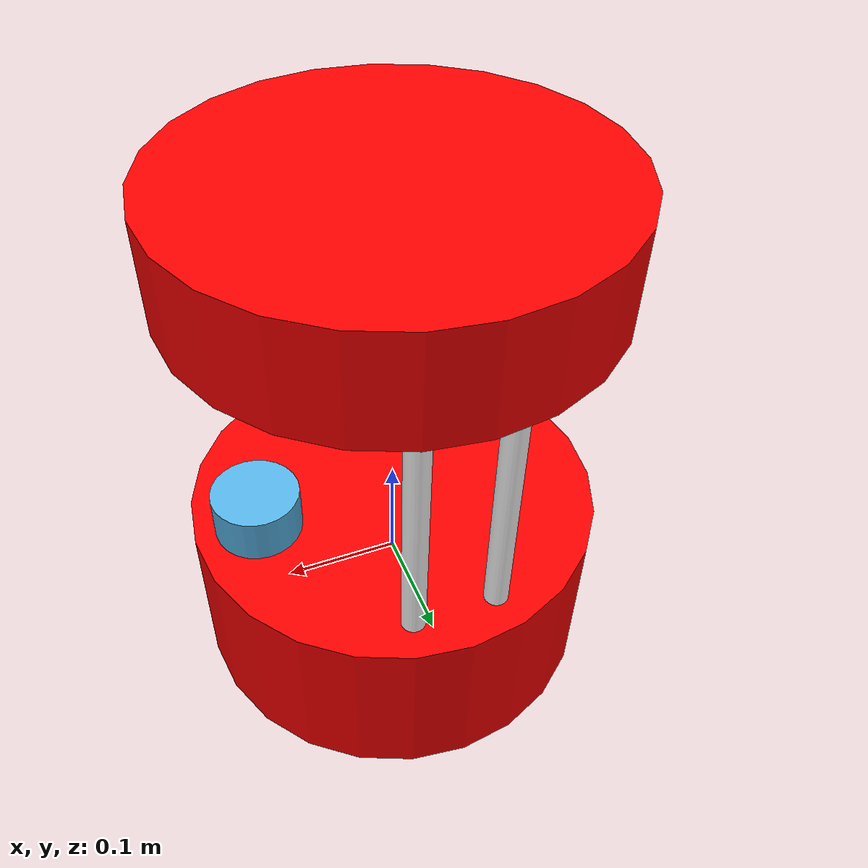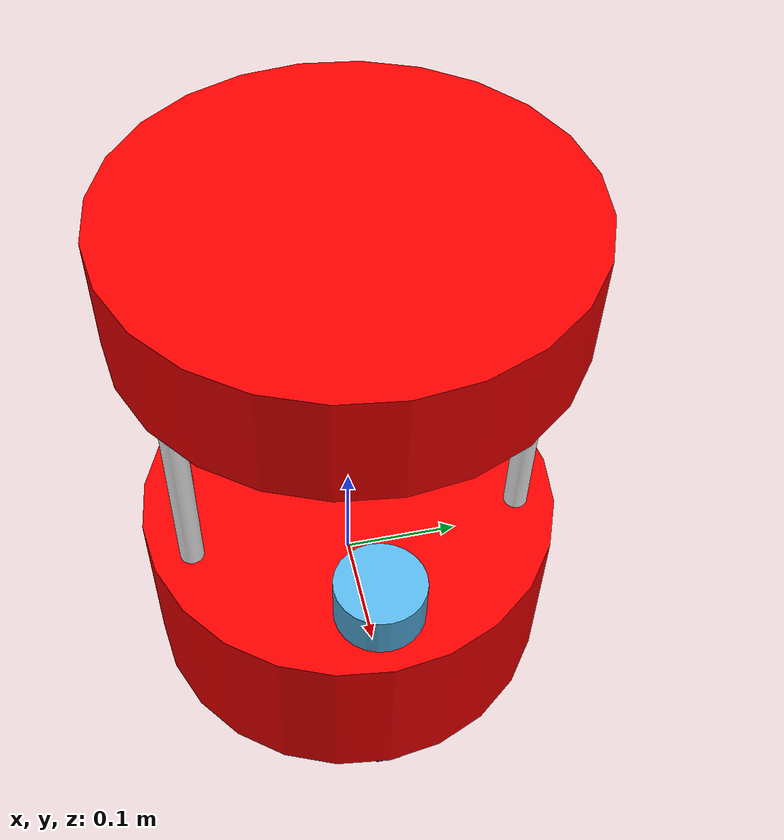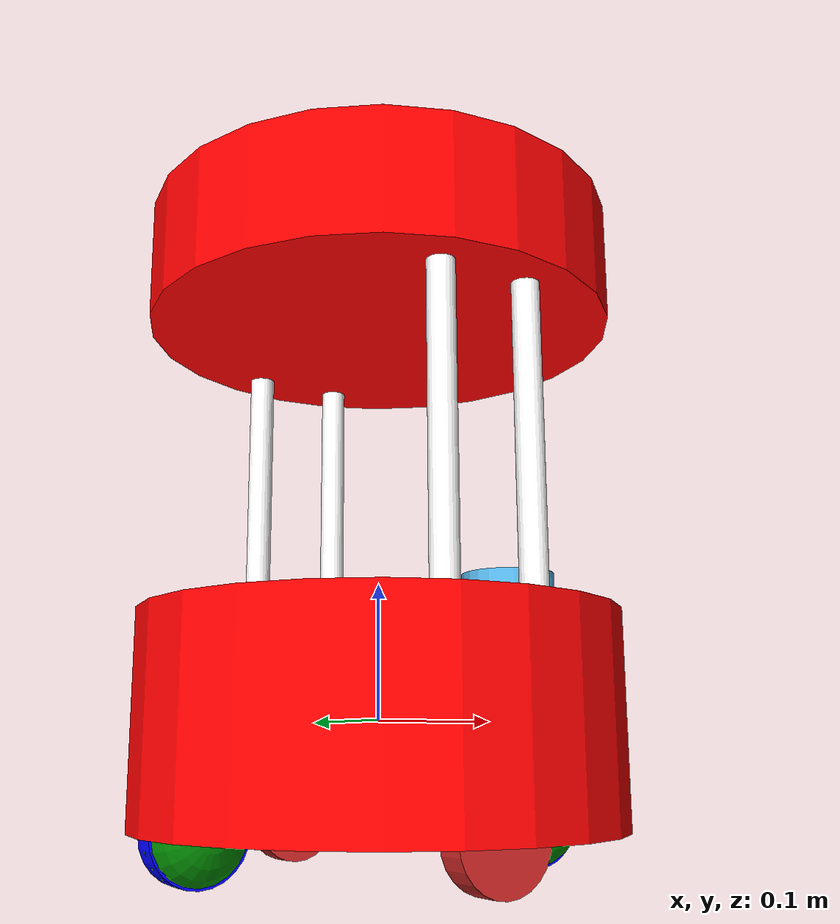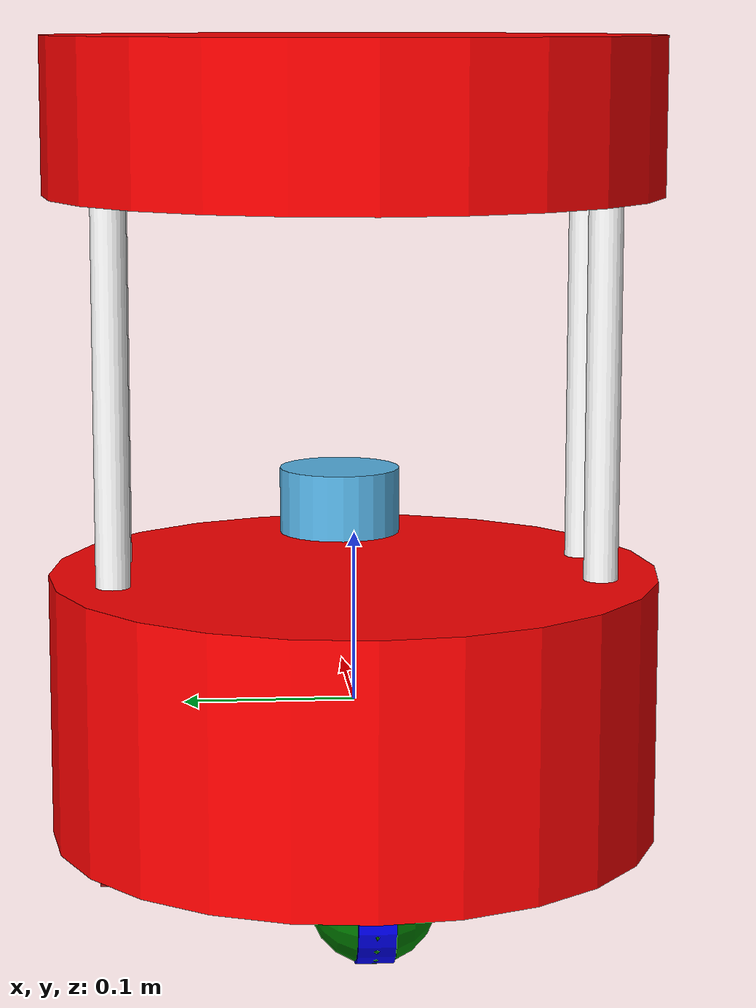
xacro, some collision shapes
<?xml version="1.0"?>
<robot xmlns:xacro="http://www.ros.org/wiki/xacro" name="barista_robot">
<xacro:arg name="robot_name" default=""/>
<xacro:property name="robot_name" value="$(arg robot_name)"/>

<xacro:property name="baseheadlink_radius" value="0.178"/>
<xacro:property name="baselink_height" value="0.155"/>
<xacro:property name="headlink_height" value="0.090"/>
<xacro:property name="headlink_mass" value="10.335"/>
<xacro:property name="rod_radius" value="0.010"/>
<xacro:property name="rod_height" value="0.220"/>
<xacro:property name="rod_mass" value="0.1"/>
<xacro:property name="wheel_radius" value="0.0352"/>
<xacro:property name="wheel_width" value="0.0206"/>
<xacro:property name="wheel_mass" value="1.0"/>

<xacro:property name="laser_box_width" value="0.05"/>
<xacro:property name="laser_box_length" value="0.05"/>
<xacro:property name="laser_box_height" value="0.05"/>

  <material name="red">
      <color rgba="1.0 0.0 0.0 1"/>
  </material>

  <material name="green_light">
      <color rgba="0.0 1.0 0.0 1"/>
  </material>

  <material name="green_dark">
    <color rgba="0.0 0.5 0.0 1"/>
  </material>

  <material name="blue">
      <color rgba="0.0 0.0 1.0 1"/>
  </material>

  <material name="yellow">
      <color rgba="1.0 1.0 0.0 1"/>
  </material>

  <material name="black">
      <color rgba="0.0 0.0 0.0 1"/>
  </material>

  <material name="white">
      <color rgba="1.0 1.0 1.0 1"/>
  </material>

  <link name="base_link">
    <visual>
      <geometry>
      <cylinder radius="${baseheadlink_radius}" length="${baselink_height}"/>
      </geometry>

    <xacro:if value="${robot_name == 'morty'}">
                <material name="green_dark"/>
    </xacro:if>
     <xacro:unless value="${robot_name == 'morty'}">
                <material name="red"/>
    </xacro:unless>

    </visual>

    <collision>
          <geometry>
      <cylinder radius="${baseheadlink_radius}" length="${baselink_height}"/>
      </geometry>
    </collision>

        <inertial>
      <mass value="17.8"/>
      <origin rpy="0 0 0" xyz="0 0 0"/>
      <inertia ixx="0.17663088333333335" ixy="0" ixz="0" iyy="0.17663088333333335" iyz="0" izz="0.2819876"/>
    </inertial>

  </link>

    <xacro:if value="${robot_name == 'morty'}">
    <gazebo reference="base_link">
        <material>Gazebo/Green</material>
    </gazebo>
    </xacro:if>
     <xacro:unless value="${robot_name == 'morty'}">
    <gazebo reference="base_link">
        <material>Gazebo/Red</material>
    </gazebo>
    </xacro:unless>

 <!-- Attaching TF for TF follow -->
  <link name="barista_attach_frame">
  </link>

  <joint name="barista_attach_frame_joint" type="fixed">
    <origin rpy="0 0 0" xyz="0.5 0.5 0" />
    <parent link="base_link" />
    <child link="barista_attach_frame" />
  </joint>

  <!-- Standoff Macro -->
  <xacro:include filename="$(find barista_robot_description)/urdf/standoff.xacro" />
  <xacro:standoff standoff_name="base_to_head_rod_1" />
  <xacro:standoff standoff_name="base_to_head_rod_2" />
  <xacro:standoff standoff_name="base_to_head_rod_3" />
  <xacro:standoff standoff_name="base_to_head_rod_4" />

  <joint name="base_link_to_rod_1" type="fixed">
        <origin rpy="0 0 1.5708" xyz="0.0356 0.140 0.0775" />
        <parent link="base_link" />
        <child link="base_to_head_rod_1" />/>
   </joint>
  <joint name="base_link_to_rod_2" type="fixed">
        <origin rpy="0 0 1.5708" xyz="-0.0356 0.140 0.0775" />
        <parent link="base_link" />
        <child link="base_to_head_rod_2" />/>
   </joint>
  <joint name="base_link_to_rod_3" type="fixed">
        <origin rpy="0 0 1.5708" xyz="0.0356 -0.140 0.0775" />
        <parent link="base_link" />
        <child link="base_to_head_rod_3" />/>
   </joint>
  <joint name="base_link_to_rod_4" type="fixed">
        <origin rpy="0 0 1.5708" xyz=" -0.0356 -0.140 0.0775" />
        <parent link="base_link" />
        <child link="base_to_head_rod_4" />/>
   </joint>
  <joint name="base_link_to_head_link" type="fixed">
        <origin rpy="0 0 0" xyz="0 0 0.2975" />
        <parent link="base_link" />
        <child link="head_link" />/>
   </joint>

  <!-- Cup holder tray Macro -->
  <xacro:include filename="$(find barista_robot_description)/urdf/cup_holder_tray.xacro" />
  <xacro:cup_holder_tray cup_holder_tray_name="head_link" />

  <!-- Wheel Macro -->
  <xacro:include filename="$(find barista_robot_description)/urdf/wheel.xacro" />
  <!-- Wheel Left -->
  <xacro:wheel wheel_name="left_wheel" />

  <!-- Wheel Right -->
  <xacro:wheel wheel_name="right_wheel" />

  <joint name="joint_left_wheel" type="continuous">
    <origin rpy="0 0 0" xyz="0 0.14 -0.075"/>
    <child link="left_wheel"/>
    <parent link="base_link"/>
    <axis rpy="0 0 0" xyz="0 1 0"/>
    <limit effort="10000" velocity="1000"/>
    <joint_properties damping="1.0" friction="1.0"/>
  </joint>

  <joint name="joint_right_wheel" type="continuous">
    <origin rpy="0 0 0" xyz="0 -0.14 -0.075"/>
    <child link="right_wheel"/>
    <parent link="base_link"/>
    <axis rpy="0 0 0" xyz="0 1 0"/>
    <limit effort="10000" velocity="1000"/>
    <joint_properties damping="1.0" friction="1.0"/>
  </joint>

<!-- Caster Wheel Front -->
 <joint name="front_yaw_joint" type="continuous">
    <origin rpy="0 0 0" xyz="0.14 0 -0.075" />
    <parent link="base_link" />
    <child link="front_yaw_link" />
    <axis xyz="0 0 1" />
    <limit effort="1000.0" velocity="100.0" />
    <dynamics damping="0.1" friction="0.5"/>
  </joint>
  <link name="front_yaw_link">
    <visual>
        <origin rpy="0 1.5707 1.5707" xyz="0 0 0"/>
        <geometry>
          <cylinder length="0.0206" radius="0.0352"/>
        </geometry>
        <material name="blue"/>
      </visual>
      <collision>
              <origin rpy="0 1.5707 1.5707" xyz="0 0 0"/>
        <geometry>
          <cylinder length="0.0206" radius="0.0352"/>
        </geometry>
      </collision>
      <inertial>
          <origin rpy="0 1.5707 1.5707" xyz="0 0 0"/>
          <mass value="0.3"/>
          <inertia ixx="0.000103537" ixy="0" ixz="0" iyy="0.000103537" iyz="0" izz="0.000185856"/>
      </inertial>
  </link>
<gazebo reference="front_yaw_link">
    <material>Gazebo/Blue</material>
</gazebo>

  <joint name="front_roll_joint" type="continuous">
    <origin rpy="0 0 0" xyz="0 0 0" />
    <parent link="front_yaw_link" />
    <child link="front_roll_link" />
    <axis xyz="1 0 0" />
    <limit effort="1000.0" velocity="100.0" />
    <dynamics damping="0.1" friction="0.5"/>
  </joint>
  <link name="front_roll_link">
      <visual>
        <origin rpy="0 1.5707 1.5707" xyz="0 0 0"/>
        <geometry>
          <cylinder length="0.0206" radius="0.0352"/>
        </geometry>
        <material name="red"/>
      </visual>
      <collision>
              <origin rpy="0 1.5707 1.5707" xyz="0 0 0"/>
        <geometry>
          <cylinder length="0.0206" radius="0.0352"/>
        </geometry>
      </collision>
      <inertial>
          <origin rpy="0 1.5707 1.5707" xyz="0 0 0"/>
          <mass value="0.3"/>
          <inertia ixx="0.000103537" ixy="0" ixz="0" iyy="0.000103537" iyz="0" izz="0.000185856"/>
      </inertial>
  </link>
    <gazebo reference="front_roll_link">
        <material>Gazebo/Red</material>
    </gazebo>

  <joint name="front_pitch_joint" type="continuous">
    <origin rpy="0 0 0" xyz="0.14 0 -0.075" />
    <parent link="base_link" />
    <child link="front_pitch_link" />
    <axis xyz="0 1 0" />
    <limit effort="1000.0" velocity="100.0" />
    <dynamics damping="0.1" friction="0.5"/>
  </joint>
  <link name="front_pitch_link">
    <visual>
      <origin rpy="0 1.5707 1.5707" xyz="0 0 0"/>
      <geometry>
        <sphere radius="0.0352"/>
      </geometry>
      <material name="green_dark"/>
    </visual>
    <collision>
          <origin rpy="0 1.5707 1.5707" xyz="0 0 0"/>
      <geometry>
        <sphere radius="0.0352"/>
      </geometry>
    </collision>
      <inertial>
          <origin rpy="0 1.5707 1.5707" xyz="0 0 0"/>
          <mass value="0.3"/>
          <inertia ixx="0.0001486848" ixy="0" ixz="0" iyy="0.0001486848" iyz="0" izz="0.0001486848"/>
      </inertial>
  </link>
  <gazebo reference="front_pitch_link">
    <kp>1000000000000000000000000000.0</kp>
    <kd>1000000000000000000000000000.0</kd>
    <mu1>0.5</mu1>
    <mu2>0.5</mu2>
    <material>Gazebo/Red</material>
</gazebo>

<!-- Caster Wheel Back -->
  <joint name="back_yaw_joint" type="continuous">
    <origin rpy="0 0 0" xyz="-0.14 0 -0.075" />
    <parent link="base_link" />
    <child link="back_yaw_link" />
    <axis xyz="0 0 1" />
    <limit effort="1000.0" velocity="100.0" />
    <dynamics damping="0.1" friction="0.5"/>
  </joint>
  <link name="back_yaw_link">
    <visual>
        <origin rpy="0 1.5707 1.5707" xyz="0 0 0"/>
        <geometry>
          <cylinder length="0.0206" radius="0.0352"/>
        </geometry>
        <material name="blue"/>
      </visual>
      <collision>
              <origin rpy="0 1.5707 1.5707" xyz="0 0 0"/>
        <geometry>
          <cylinder length="0.0206" radius="0.0352"/>
        </geometry>
      </collision>
      <inertial>
          <origin rpy="0 1.5707 1.5707" xyz="0 0 0"/>
          <mass value="0.3"/>
          <inertia ixx="0.000103537" ixy="0" ixz="0" iyy="0.000103537" iyz="0" izz="0.000185856"/>
      </inertial>
  </link>
<gazebo reference="back_yaw_link">
    <material>Gazebo/Blue</material>
</gazebo>

  <joint name="back_roll_joint" type="continuous">
    <origin rpy="0 0 0" xyz="0 0 0" />
    <parent link="back_yaw_link" />
    <child link="back_roll_link" />
    <axis xyz="1 0 0" />
    <limit effort="1000.0" velocity="100.0" />
    <dynamics damping="0.1" friction="0.5"/>
  </joint>

  <link name="back_roll_link">
      <visual>
        <origin rpy="0 1.5707 1.5707" xyz="0 0 0"/>
        <geometry>
          <cylinder length="0.0206" radius="0.0352"/>
        </geometry>
        <material name="red"/>
      </visual>
      <collision>
              <origin rpy="0 1.5707 1.5707" xyz="0 0 0"/>
        <geometry>
          <cylinder length="0.0206" radius="0.0352"/>
        </geometry>
      </collision>
      <inertial>
          <origin rpy="0 1.5707 1.5707" xyz="0 0 0"/>
          <mass value="0.3"/>
          <inertia ixx="0.000103537" ixy="0" ixz="0" iyy="0.000103537" iyz="0" izz="0.000185856"/>
      </inertial>
  </link>

<gazebo reference="back_roll_link">
    <material>Gazebo/Red</material>
</gazebo>

  <joint name="back_pitch_joint" type="continuous">
    <origin rpy="0 0 0" xyz="-0.14 0 -0.075" />
    <parent link="base_link" />
    <child link="back_pitch_link" />
    <axis xyz="0 1 0" />
    <limit effort="1000.0" velocity="100.0" />
    <dynamics damping="0.1" friction="0.5"/>
  </joint>

  <link name="back_pitch_link">
    <visual>
      <origin rpy="0 1.5707 1.5707" xyz="0 0 0"/>
      <geometry>
        <sphere radius="0.0352"/>
      </geometry>
      <material name="green_dark"/>
    </visual>
    <collision>
          <origin rpy="0 1.5707 1.5707" xyz="0 0 0"/>
      <geometry>
        <sphere radius="0.0352"/>
      </geometry>
    </collision>
      <inertial>
          <origin rpy="0 1.5707 1.5707" xyz="0 0 0"/>
          <mass value="0.3"/>
          <inertia ixx="0.0001486848" ixy="0" ixz="0" iyy="0.0001486848" iyz="0" izz="0.0001486848"/>
      </inertial>
  </link>
  <gazebo reference="back_pitch_link">
    <kp>1000000000000000000000000000.0</kp>
    <kd>1000000000000000000000000000.0</kd>
    <mu1>0.5</mu1>
    <mu2>0.5</mu2>
    <material>Gazebo/Red</material>
</gazebo>

<xacro:macro name="laser_scan" params="laser_scan_name">
<link name="${laser_scan_name}">
    <visual>
      <origin rpy="0 0 0" xyz="0 0 0"/>
      <geometry>
        <box size="${laser_box_width} ${laser_box_length} ${laser_box_height}"/>
      </geometry>
    </visual>

    <collision>
       <origin rpy="0 0 0" xyz="0 0 0.0204"/>
      <geometry>
       <box size="${laser_box_width} ${laser_box_length} ${laser_box_height}"/>
      </geometry>
    </collision>

    <inertial>
      <mass value="0.01"/>
      <origin rpy="0 0 0" xyz="0 0 0.0204"/>
      <inertia ixx="6.066578520833334e-06" ixy="0" ixz="0" iyy="6.072950163333333e-06" iyz="0" izz="9.365128684166666e-06"/>
    </inertial>
</link>
 <gazebo reference="${laser_scan_name}">
    <material>Gazebo/Yellow</material>
</gazebo>
</xacro:macro>
 <xacro:laser_scan laser_scan_name="laser_scan_link" />

<joint name="laser_scan_link_joint" type="fixed">
    <origin rpy="0 0 0" xyz="0.1224 0.0 0.0775"/>
    <parent link="base_link"/>
    <child link="laser_scan_link"/>
    <axis xyz="0 0 1"/>
    <limit lower="-0.1" upper="0.0" effort="20.0" velocity="2.0"/>
    <dynamics damping="0.1" friction="1.0"/>
</joint>

<link name="laser_scan_frame">
</link>

<joint name="laser_scan_frame_joint" type="fixed">
    <origin rpy="0 0 0" xyz="0 0 0.06"/>
    <parent link="laser_scan_link"/>
    <child link="laser_scan_frame"/>
    <axis xyz="0 0 0"/>
</joint>

 <!-- Visual Laser Model to be rotated -->
  <link name="laser_scan_model_link">
    <visual>
      <origin rpy="0 0 0" xyz="0 0 0"/>
      <geometry>
        <mesh filename="package://barista_robot_description/meshes/hokuyo_urg_04lx.dae" scale="1.0 1.0 1.0"/>
      </geometry>
    </visual>

    <collision>
       <origin rpy="0 0 0" xyz="0 0 0.0204"/>
      <geometry>
        <cylinder length="0.0408" radius="0.037493"/>
      </geometry>
    </collision>

    <inertial>

      <mass value="0.01"/>
      <origin rpy="0 0 0" xyz="0 0 0.0204"/>
      <inertia ixx="6.066578520833334e-06" ixy="0" ixz="0" iyy="6.072950163333333e-06" iyz="0" izz="9.365128684166666e-06"/>
    </inertial>
  </link>
<gazebo reference="laser_scan_model_link_joint">
    <material>Gazebo/Yellow</material>
</gazebo>
  <joint name="laser_scan_model_link_joint" type="fixed">
    <origin rpy="0 0 0" xyz="0.0 0.0 0.0"/>
    <parent link="laser_scan_link"/>
    <child link="laser_scan_model_link"/>
    <axis xyz="0 0 1"/>
    <limit effort="10.0" velocity="2.0"/>
    <dynamics friction="0.01"/>
  </joint>

<gazebo reference="laser_scan_frame">
    <sensor name="lidar" type="gpu_lidar">
      <always_on>true</always_on>
      <visualize>true</visualize>
      <topic>scan</topic>
      <update_rate>5</update_rate>
      <gz_frame_id>laser_scan_frame</gz_frame_id>
      <lidar>
        <scan>
          <horizontal>
            <samples>360</samples>
            <resolution>1.00000</resolution>
            <min_angle>0.000000</min_angle>
            <max_angle>6.280000</max_angle>
          </horizontal>
        </scan>
        <range>
          <min>0.120000</min>
          <max>12.0</max>
          <resolution>0.02</resolution>
        </range>
        <noise>
          <type>gaussian</type>
          <mean>0.0</mean>
          <stddev>0.01</stddev>
        </noise>
      </lidar>
    </sensor>
</gazebo>

 <!-- ROS 2 Control -->
  <gazebo>
    <!-- ROS 2 Humble -->
    <plugin filename="gz_ros2_control-system" name="gz_ros2_control::GazeboSimROS2ControlPlugin">
        <parameters>$(find barista_robot_description)/config/barista_controllers.yaml</parameters>
    </plugin>
    <plugin filename="libignition-gazebo-sensors-system.so"  name="ignition::gazebo::systems::Sensors">
        <render_engine>ogre2</render_engine>
    </plugin>
  </gazebo>

  <!-- JOINT PUBLISHER -->
  <gazebo>
    <plugin name="ignition::gazebo::systems::JointStatePublisher" filename="ignition-gazebo-joint-state-publisher-system">
      <ros>
          <namespace>/${robot_name}</namespace>
          <remapping>~/out:=joint_states</remapping>
      </ros>
      <update_rate>30</update_rate>

      <joint_name>joint_left_wheel</joint_name>
      <joint_name>joint_right_wheel</joint_name>
      <joint_name>front_yaw_joint</joint_name>
      <joint_name>back_yaw_joint</joint_name>
      <joint_name>front_roll_joint</joint_name>
      <joint_name>back_roll_joint</joint_name>
      <joint_name>front_pitch_joint</joint_name>
      <joint_name>back_pitch_joint</joint_name>
      <joint_name>laser_scan_link_joint</joint_name>
      <joint_name>laser_scan_model_link_joint</joint_name>
    </plugin>
  </gazebo>

    <ros2_control name="RobotSystem" type="system">

        <!-- ros2_control Gazebo -->
        <!-- ROS 2 Humble -->
        <hardware>
            <plugin>gz_ros2_control/GazeboSimSystem</plugin>
        </hardware>

        <!-- ros2_control Common Interfaces -->
        <joint name="joint_right_wheel">
            <command_interface name="velocity">
              <param name="min">-1</param>
              <param name="max">1</param>
            </command_interface>
            <state_interface name="position" />
            <state_interface name="velocity" />
        </joint>

        <joint name="joint_left_wheel">
            <command_interface name="velocity">
              <param name="min">-1</param>
              <param name="max">1</param>
            </command_interface>
            <state_interface name="position" />
            <state_interface name="velocity" />
        </joint>

    </ros2_control>

</robot>

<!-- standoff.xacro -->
<robot xmlns:xacro="http://www.ros.org/wiki/xacro">

<xacro:macro name="standoff" params="standoff_name">
  <link name="${standoff_name}">
      <visual>
    <origin rpy="0 0 1.5707" xyz="0 0 0.110" />
      <geometry>
        <cylinder radius="${rod_radius}" length="${rod_height}"/>
      </geometry>
                  <material name="white"/>
    </visual>

    <collision>
    <origin rpy="0 0 1.5707" xyz="0 0 0.110" />
      <geometry>
        <cylinder radius="${rod_radius}" length="${rod_height}"/>
      </geometry>
    </collision>

      <inertial>
      <mass value="${rod_mass}"/>
    <origin rpy="0 0 1.5707" xyz="0 0 0.110" />
      <inertia ixx="0.00040583333333333335" ixy="0" ixz="0" iyy="0.00040583333333333335" iyz="0" izz="0.000005"/>
    </inertial>
  </link>
<gazebo reference="${standoff_name}">
    <material>Gazebo/Grey</material>
</gazebo>

  </xacro:macro>

</robot>

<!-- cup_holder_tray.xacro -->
<robot xmlns:xacro="http://www.ros.org/wiki/xacro">

<xacro:macro name="cup_holder_tray" params="cup_holder_tray_name">

 <link name="${cup_holder_tray_name}">
      <visual>
    <origin rpy="0 0 0" xyz="0 0 0.045" />
      <geometry>
        <cylinder radius="${baseheadlink_radius}" length="${headlink_height}"/>
      </geometry>

    <xacro:if value="${robot_name == 'morty'}">
                <material name="green_dark"/>
    </xacro:if>
     <xacro:unless value="${robot_name == 'morty'}">
                <material name="red"/>
    </xacro:unless>
    </visual>
   <collision>
       <origin rpy="0 0 0" xyz="0 0 0.045" />
      <geometry>
        <cylinder radius="${baseheadlink_radius}" length="${headlink_height}"/>
      </geometry>
   </collision>
      <inertial>
      <mass value="${headlink_mass}"/>
    <origin rpy="0 0 0" xyz="0 0 0.045" />
      <inertia ixx="0.08883966" ixy="0" ixz="0" iyy="0.08883966" iyz="0" izz="0.16372707"/>
    </inertial>

  </link>
    <xacro:if value="${robot_name == 'morty'}">
    <gazebo reference="${cup_holder_tray_name}">
        <material>Gazebo/Green</material>
    </gazebo>
    </xacro:if>
    <xacro:unless value="${robot_name == 'morty'}">
        <gazebo reference="${cup_holder_tray_name}">
        <material>Gazebo/Red</material>
    </gazebo>
    </xacro:unless>
</xacro:macro>

</robot>

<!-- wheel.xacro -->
<robot xmlns:xacro="http://www.ros.org/wiki/xacro">

<xacro:macro name="wheel" params="wheel_name">

  <link name="${wheel_name}">
      <visual>
        <origin rpy="1.5707 0 0" xyz="0 0 0"/>
        <geometry>
          <cylinder length="${wheel_width}" radius="${wheel_radius}"/>
        </geometry>
      </visual>

      <collision>
        <origin rpy="1.5707 0 0" xyz="0 0 0"/>
        <geometry>
          <cylinder length="${wheel_width}" radius="${wheel_radius}"/>
        </geometry>
      </collision>

      <inertial>
        <origin rpy="1.5707 0 0" xyz="0 0 0"/>
        <mass value="${wheel_mass}"/>
       <inertia ixx="0.00034512333333333334" ixy="0" ixz="0" iyy="0.00034512333333333334" iyz="0" izz="0.00061952"/>
      </inertial>
  </link>
  <gazebo reference="${wheel_name}">
    <kp>1000000000000000000000000000.0</kp>
    <kd>1000000000000000000000000000.0</kd>
    <mu1>0.5</mu1>
    <mu2>0.5</mu2>
    <material>Gazebo/Red</material>
</gazebo>
</xacro:macro>

</robot>
